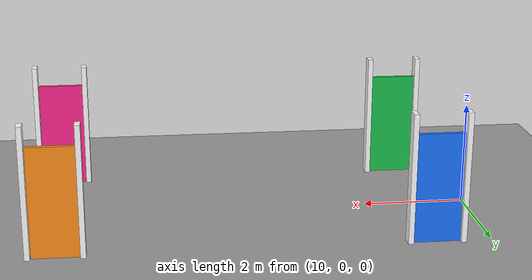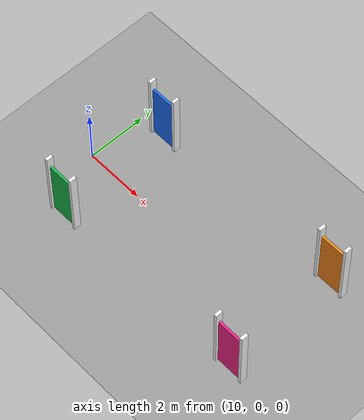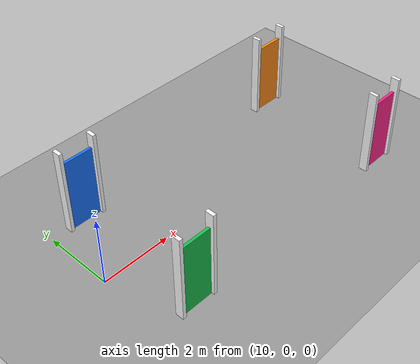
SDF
<sdf version="1.9">
 <world name="default">
  <model name="ground_plane">
   <static>1</static>
   <link name="link">
    <collision name="collision">
     <geometry><plane><normal>0 0 1</normal><size>100 100</size></plane></geometry>
     <surface>
      <contact><collide_bitmask>65535</collide_bitmask></contact>
      <friction><ode><mu>100</mu><mu2>50</mu2></ode></friction>
     </surface>
    </collision>
    <visual name="visual">
     <cast_shadows>0</cast_shadows>
     <geometry><plane><normal>0 0 1</normal><size>100 100</size></plane></geometry>
     <material><ambient>0.6 0.6 0.6 1</ambient><diffuse>0.6 0.6 0.6 1</diffuse></material>
    </visual>
   </link>
  </model>
  <model name="door_blue">
   <link name="jamb_left">
    <pose>10.55 2.0 0 0 0 0</pose>
    <inertial>
     <mass>2.0</mass>
     <inertia><ixx>1.05</ixx><ixy>0</ixy><ixz>0</ixz><iyy>1.04</iyy><iyz>0</iyz><izz>0.011</izz></inertia>
    </inertial>
    <collision name="col">
     <pose>0 0 1.25 0 0 0</pose>
     <geometry><box><size>0.1 0.24 2.5</size></box></geometry>
    </collision>
    <visual name="vis">
     <pose>0 0 1.25 0 0 0</pose>
     <geometry><box><size>0.1 0.24 2.5</size></box></geometry>
     <material><ambient>1 1 1 1</ambient><diffuse>1 1 1 1</diffuse></material>
    </visual>
   </link>
   <link name="jamb_right">
    <pose>11.5 2.0 0 0 0 0</pose>
    <inertial>
     <mass>2.0</mass>
     <inertia><ixx>1.05</ixx><ixy>0</ixy><ixz>0</ixz><iyy>1.04</iyy><iyz>0</iyz><izz>0.011</izz></inertia>
    </inertial>
    <collision name="col">
     <pose>0.05 0 1.25 0 0 0</pose>
     <geometry><box><size>0.1 0.24 2.5</size></box></geometry>
    </collision>
    <visual name="vis">
     <pose>0.05 0 1.25 0 0 0</pose>
     <geometry><box><size>0.1 0.24 2.5</size></box></geometry>
     <material><ambient>1 1 1 1</ambient><diffuse>1 1 1 1</diffuse></material>
    </visual>
   </link>
   <link name="leaf">
    <pose>10.55 2.0 0 0 0 0</pose>
    <inertial>
     <mass>5.0</mass>
     <inertia><ixx>1.84</ixx><ixy>0</ixy><ixz>0</ixz><iyy>2.21</iyy><iyz>0</iyz><izz>0.37</izz></inertia>
    </inertial>
    <collision name="col">
     <pose>0.47 0 1.05 0 0 0</pose>
     <geometry><box><size>0.94 0.08 2.1</size></box></geometry>
    </collision>
    <visual name="vis">
     <pose>0.47 0 1.05 0 0 0</pose>
     <geometry><box><size>0.94 0.08 2.1</size></box></geometry>
     <material><ambient>0.1 0.45 1 1</ambient><diffuse>0.1 0.45 1 1</diffuse></material>
    </visual>
    <visual name="hinge_barrel">
     <pose>0 0 1.05 0 0 0</pose>
     <geometry><cylinder><radius>0.025</radius><length>2.1</length></cylinder></geometry>
     <material><ambient>0.1 0.45 1 1</ambient><diffuse>0.1 0.45 1 1</diffuse></material>
    </visual>
   </link>
   <joint name="fix_left" type="fixed"><parent>world</parent><child>jamb_left</child></joint>
   <joint name="fix_right" type="fixed"><parent>world</parent><child>jamb_right</child></joint>
   <joint name="hinge_blue" type="revolute">
    <parent>jamb_left</parent>
    <child>leaf</child>
    <axis>
     <xyz>0 0 1</xyz>
     <limit><lower>0</lower><upper>1.55</upper><effort>50</effort><velocity>1.0</velocity></limit>
     <dynamics><damping>0.3</damping><friction>0.1</friction></dynamics>
    </axis>
   </joint>
   <plugin filename="gz-sim-joint-position-controller-system" name="gz::sim::systems::JointPositionController">
    <joint_name>hinge_blue</joint_name>
   </plugin>
  </model>
  <model name="door_green">
   <link name="jamb_left">
    <pose>10.55 -2.0 0 0 0 0</pose>
    <inertial>
     <mass>2.0</mass>
     <inertia><ixx>1.05</ixx><ixy>0</ixy><ixz>0</ixz><iyy>1.04</iyy><iyz>0</iyz><izz>0.011</izz></inertia>
    </inertial>
    <collision name="col">
     <pose>0 0 1.25 0 0 0</pose>
     <geometry><box><size>0.1 0.24 2.5</size></box></geometry>
    </collision>
    <visual name="vis">
     <pose>0 0 1.25 0 0 0</pose>
     <geometry><box><size>0.1 0.24 2.5</size></box></geometry>
     <material><ambient>1 1 1 1</ambient><diffuse>1 1 1 1</diffuse></material>
    </visual>
   </link>
   <link name="jamb_right">
    <pose>11.5 -2.0 0 0 0 0</pose>
    <inertial>
     <mass>2.0</mass>
     <inertia><ixx>1.05</ixx><ixy>0</ixy><ixz>0</ixz><iyy>1.04</iyy><iyz>0</iyz><izz>0.011</izz></inertia>
    </inertial>
    <collision name="col">
     <pose>0.05 0 1.25 0 0 0</pose>
     <geometry><box><size>0.1 0.24 2.5</size></box></geometry>
    </collision>
    <visual name="vis">
     <pose>0.05 0 1.25 0 0 0</pose>
     <geometry><box><size>0.1 0.24 2.5</size></box></geometry>
     <material><ambient>1 1 1 1</ambient><diffuse>1 1 1 1</diffuse></material>
    </visual>
   </link>
   <link name="leaf">
    <pose>10.55 -2.0 0 0 0 0</pose>
    <inertial>
     <mass>5.0</mass>
     <inertia><ixx>1.84</ixx><ixy>0</ixy><ixz>0</ixz><iyy>2.21</iyy><iyz>0</iyz><izz>0.37</izz></inertia>
    </inertial>
    <collision name="col">
     <pose>0.47 0 1.05 0 0 0</pose>
     <geometry><box><size>0.94 0.08 2.1</size></box></geometry>
    </collision>
    <visual name="vis">
     <pose>0.47 0 1.05 0 0 0</pose>
     <geometry><box><size>0.94 0.08 2.1</size></box></geometry>
     <material><ambient>0.1 0.75 0.3 1</ambient><diffuse>0.1 0.75 0.3 1</diffuse></material>
    </visual>
    <visual name="hinge_barrel">
     <pose>0 0 1.05 0 0 0</pose>
     <geometry><cylinder><radius>0.025</radius><length>2.1</length></cylinder></geometry>
     <material><ambient>0.1 0.75 0.3 1</ambient><diffuse>0.1 0.75 0.3 1</diffuse></material>
    </visual>
   </link>
   <joint name="fix_left" type="fixed"><parent>world</parent><child>jamb_left</child></joint>
   <joint name="fix_right" type="fixed"><parent>world</parent><child>jamb_right</child></joint>
   <joint name="hinge_green" type="revolute">
    <parent>jamb_left</parent>
    <child>leaf</child>
    <axis>
     <xyz>0 0 1</xyz>
     <limit><lower>-1.55</lower><upper>0</upper><effort>50</effort><velocity>1.0</velocity></limit>
     <dynamics><damping>0.3</damping><friction>0.1</friction></dynamics>
    </axis>
   </joint>
   <plugin filename="gz-sim-joint-position-controller-system" name="gz::sim::systems::JointPositionController">
    <joint_name>hinge_green</joint_name>
   </plugin>
  </model>
  <model name="door_orange">
   <link name="jamb_left">
    <pose>17.55 2.0 0 0 0 0</pose>
    <inertial>
     <mass>2.0</mass>
     <inertia><ixx>1.05</ixx><ixy>0</ixy><ixz>0</ixz><iyy>1.04</iyy><iyz>0</iyz><izz>0.011</izz></inertia>
    </inertial>
    <collision name="col">
     <pose>0 0 1.25 0 0 0</pose>
     <geometry><box><size>0.1 0.24 2.5</size></box></geometry>
    </collision>
    <visual name="vis">
     <pose>0 0 1.25 0 0 0</pose>
     <geometry><box><size>0.1 0.24 2.5</size></box></geometry>
     <material><ambient>1 1 1 1</ambient><diffuse>1 1 1 1</diffuse></material>
    </visual>
   </link>
   <link name="jamb_right">
    <pose>18.5 2.0 0 0 0 0</pose>
    <inertial>
     <mass>2.0</mass>
     <inertia><ixx>1.05</ixx><ixy>0</ixy><ixz>0</ixz><iyy>1.04</iyy><iyz>0</iyz><izz>0.011</izz></inertia>
    </inertial>
    <collision name="col">
     <pose>0.05 0 1.25 0 0 0</pose>
     <geometry><box><size>0.1 0.24 2.5</size></box></geometry>
    </collision>
    <visual name="vis">
     <pose>0.05 0 1.25 0 0 0</pose>
     <geometry><box><size>0.1 0.24 2.5</size></box></geometry>
     <material><ambient>1 1 1 1</ambient><diffuse>1 1 1 1</diffuse></material>
    </visual>
   </link>
   <link name="leaf">
    <pose>17.55 2.0 0 0 0 0</pose>
    <inertial>
     <mass>5.0</mass>
     <inertia><ixx>1.84</ixx><ixy>0</ixy><ixz>0</ixz><iyy>2.21</iyy><iyz>0</iyz><izz>0.37</izz></inertia>
    </inertial>
    <collision name="col">
     <pose>0.47 0 1.05 0 0 0</pose>
     <geometry><box><size>0.94 0.08 2.1</size></box></geometry>
    </collision>
    <visual name="vis">
     <pose>0.47 0 1.05 0 0 0</pose>
     <geometry><box><size>0.94 0.08 2.1</size></box></geometry>
     <material><ambient>1 0.55 0.1 1</ambient><diffuse>1 0.55 0.1 1</diffuse></material>
    </visual>
    <visual name="hinge_barrel">
     <pose>0 0 1.05 0 0 0</pose>
     <geometry><cylinder><radius>0.025</radius><length>2.1</length></cylinder></geometry>
     <material><ambient>1 0.55 0.1 1</ambient><diffuse>1 0.55 0.1 1</diffuse></material>
    </visual>
   </link>
   <joint name="fix_left" type="fixed"><parent>world</parent><child>jamb_left</child></joint>
   <joint name="fix_right" type="fixed"><parent>world</parent><child>jamb_right</child></joint>
   <joint name="hinge_orange" type="revolute">
    <parent>jamb_left</parent>
    <child>leaf</child>
    <axis>
     <xyz>0 0 1</xyz>
     <limit><lower>0</lower><upper>1.55</upper><effort>50</effort><velocity>1.0</velocity></limit>
     <dynamics><damping>0.3</damping><friction>0.1</friction></dynamics>
    </axis>
   </joint>
   <plugin filename="gz-sim-joint-position-controller-system" name="gz::sim::systems::JointPositionController">
    <joint_name>hinge_orange</joint_name>
   </plugin>
  </model>
  <model name="door_pink">
   <link name="jamb_left">
    <pose>17.55 -2.0 0 0 0 0</pose>
    <inertial>
     <mass>2.0</mass>
     <inertia><ixx>1.05</ixx><ixy>0</ixy><ixz>0</ixz><iyy>1.04</iyy><iyz>0</iyz><izz>0.011</izz></inertia>
    </inertial>
    <collision name="col">
     <pose>0 0 1.25 0 0 0</pose>
     <geometry><box><size>0.1 0.24 2.5</size></box></geometry>
    </collision>
    <visual name="vis">
     <pose>0 0 1.25 0 0 0</pose>
     <geometry><box><size>0.1 0.24 2.5</size></box></geometry>
     <material><ambient>1 1 1 1</ambient><diffuse>1 1 1 1</diffuse></material>
    </visual>
   </link>
   <link name="jamb_right">
    <pose>18.5 -2.0 0 0 0 0</pose>
    <inertial>
     <mass>2.0</mass>
     <inertia><ixx>1.05</ixx><ixy>0</ixy><ixz>0</ixz><iyy>1.04</iyy><iyz>0</iyz><izz>0.011</izz></inertia>
    </inertial>
    <collision name="col">
     <pose>0.05 0 1.25 0 0 0</pose>
     <geometry><box><size>0.1 0.24 2.5</size></box></geometry>
    </collision>
    <visual name="vis">
     <pose>0.05 0 1.25 0 0 0</pose>
     <geometry><box><size>0.1 0.24 2.5</size></box></geometry>
     <material><ambient>1 1 1 1</ambient><diffuse>1 1 1 1</diffuse></material>
    </visual>
   </link>
   <link name="leaf">
    <pose>17.55 -2.0 0 0 0 0</pose>
    <inertial>
     <mass>5.0</mass>
     <inertia><ixx>1.84</ixx><ixy>0</ixy><ixz>0</ixz><iyy>2.21</iyy><iyz>0</iyz><izz>0.37</izz></inertia>
    </inertial>
    <collision name="col">
     <pose>0.47 0 1.05 0 0 0</pose>
     <geometry><box><size>0.94 0.08 2.1</size></box></geometry>
    </collision>
    <visual name="vis">
     <pose>0.47 0 1.05 0 0 0</pose>
     <geometry><box><size>0.94 0.08 2.1</size></box></geometry>
     <material><ambient>1 0.15 0.55 1</ambient><diffuse>1 0.15 0.55 1</diffuse></material>
    </visual>
    <visual name="hinge_barrel">
     <pose>0 0 1.05 0 0 0</pose>
     <geometry><cylinder><radius>0.025</radius><length>2.1</length></cylinder></geometry>
     <material><ambient>1 0.15 0.55 1</ambient><diffuse>1 0.15 0.55 1</diffuse></material>
    </visual>
   </link>
   <joint name="fix_left" type="fixed"><parent>world</parent><child>jamb_left</child></joint>
   <joint name="fix_right" type="fixed"><parent>world</parent><child>jamb_right</child></joint>
   <joint name="hinge_pink" type="revolute">
    <parent>jamb_left</parent>
    <child>leaf</child>
    <axis>
     <xyz>0 0 1</xyz>
     <limit><lower>-1.55</lower><upper>0</upper><effort>50</effort><velocity>1.0</velocity></limit>
     <dynamics><damping>0.3</damping><friction>0.1</friction></dynamics>
    </axis>
   </joint>
   <plugin filename="gz-sim-joint-position-controller-system" name="gz::sim::systems::JointPositionController">
    <joint_name>hinge_pink</joint_name>
   </plugin>
  </model>
 </world>
</sdf>
